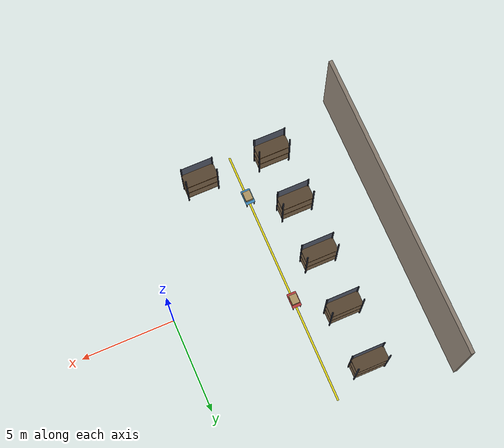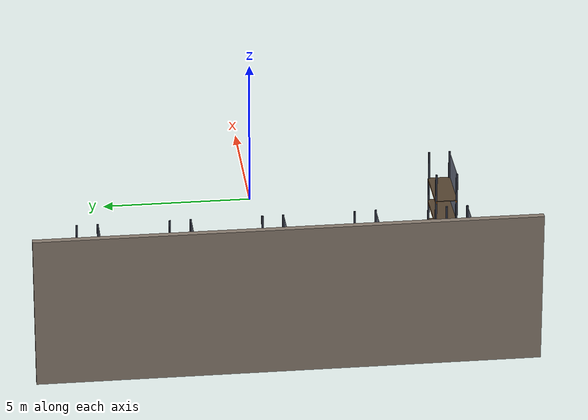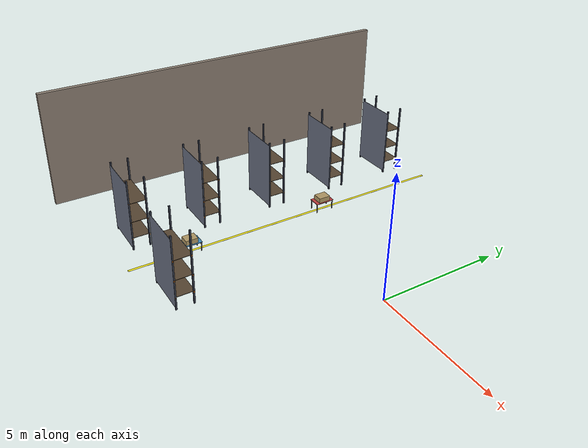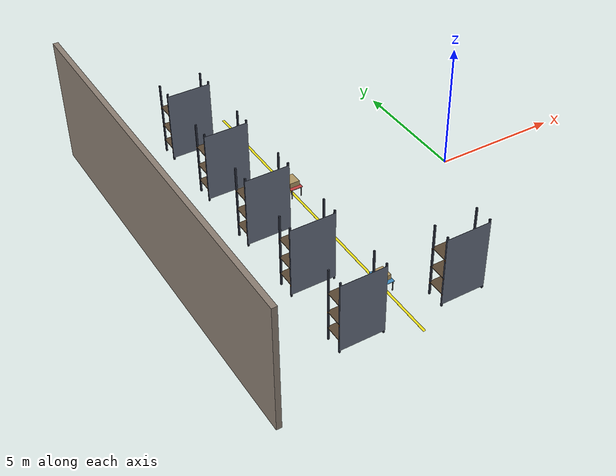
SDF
<sdf version="1.8">
 <world name="warehouse_world">
  <model name="wall_west">
   <static>true</static>
   <pose>-12 0 2.5 0 0 0</pose>
   <link name="link">
    <collision name="col"><geometry><box><size>0.2 16 5</size></box></geometry></collision>
    <visual name="vis">
     <geometry><box><size>0.2 16 5</size></box></geometry>
     <material><ambient>0.5 0.45 0.4 1</ambient><diffuse>0.55 0.5 0.45 1</diffuse></material>
    </visual>
   </link>
  </model>
  <model name="rack_A1">
   <static>true</static>
   <pose>-8 -6 0 0 0 0</pose>
   <link name="link">
    <visual name="u1">
     <pose>0.84 0.34 1.5 0 0 0</pose>
     <geometry><box><size>0.06 0.06 3.0</size></box></geometry>
     <material><ambient>0.15 0.18 0.22 1</ambient><diffuse>0.20 0.22 0.28 1</diffuse></material>
    </visual>
    <collision name="u1c">
     <pose>0.84 0.34 1.5 0 0 0</pose>
     <geometry><box><size>0.06 0.06 3.0</size></box></geometry>
    </collision>
    <visual name="u2">
     <pose>0.84 -0.34 1.5 0 0 0</pose>
     <geometry><box><size>0.06 0.06 3.0</size></box></geometry>
     <material><ambient>0.15 0.18 0.22 1</ambient><diffuse>0.20 0.22 0.28 1</diffuse></material>
    </visual>
    <collision name="u2c">
     <pose>0.84 -0.34 1.5 0 0 0</pose>
     <geometry><box><size>0.06 0.06 3.0</size></box></geometry>
    </collision>
    <visual name="u3">
     <pose>-0.84 0.34 1.5 0 0 0</pose>
     <geometry><box><size>0.06 0.06 3.0</size></box></geometry>
     <material><ambient>0.15 0.18 0.22 1</ambient><diffuse>0.20 0.22 0.28 1</diffuse></material>
    </visual>
    <collision name="u3c">
     <pose>-0.84 0.34 1.5 0 0 0</pose>
     <geometry><box><size>0.06 0.06 3.0</size></box></geometry>
    </collision>
    <visual name="u4">
     <pose>-0.84 -0.34 1.5 0 0 0</pose>
     <geometry><box><size>0.06 0.06 3.0</size></box></geometry>
     <material><ambient>0.15 0.18 0.22 1</ambient><diffuse>0.20 0.22 0.28 1</diffuse></material>
    </visual>
    <collision name="u4c">
     <pose>-0.84 -0.34 1.5 0 0 0</pose>
     <geometry><box><size>0.06 0.06 3.0</size></box></geometry>
    </collision>
    <visual name="b1f">
     <pose>0 0.34 0.50 0 0 0</pose>
     <geometry><box><size>1.74 0.05 0.06</size></box></geometry>
     <material><ambient>0.90 0.45 0.05 1</ambient><diffuse>0.92 0.48 0.08 1</diffuse></material>
    </visual>
    <collision name="b1fc">
     <pose>0 0.34 0.50 0 0 0</pose>
     <geometry><box><size>1.74 0.05 0.06</size></box></geometry>
    </collision>
    <visual name="b1b">
     <pose>0 -0.34 0.50 0 0 0</pose>
     <geometry><box><size>1.74 0.05 0.06</size></box></geometry>
     <material><ambient>0.90 0.45 0.05 1</ambient><diffuse>0.92 0.48 0.08 1</diffuse></material>
    </visual>
    <collision name="b1bc">
     <pose>0 -0.34 0.50 0 0 0</pose>
     <geometry><box><size>1.74 0.05 0.06</size></box></geometry>
    </collision>
    <visual name="d1">
     <pose>0 0 0.54 0 0 0</pose>
     <geometry><box><size>1.74 0.74 0.02</size></box></geometry>
     <material><ambient>0.30 0.25 0.18 1</ambient><diffuse>0.35 0.28 0.20 1</diffuse></material>
    </visual>
    <collision name="d1c">
     <pose>0 0 0.54 0 0 0</pose>
     <geometry><box><size>1.74 0.74 0.02</size></box></geometry>
    </collision>
    <visual name="b2f">
     <pose>0 0.34 1.20 0 0 0</pose>
     <geometry><box><size>1.74 0.05 0.06</size></box></geometry>
     <material><ambient>0.90 0.45 0.05 1</ambient><diffuse>0.92 0.48 0.08 1</diffuse></material>
    </visual>
    <collision name="b2fc">
     <pose>0 0.34 1.20 0 0 0</pose>
     <geometry><box><size>1.74 0.05 0.06</size></box></geometry>
    </collision>
    <visual name="b2b">
     <pose>0 -0.34 1.20 0 0 0</pose>
     <geometry><box><size>1.74 0.05 0.06</size></box></geometry>
     <material><ambient>0.90 0.45 0.05 1</ambient><diffuse>0.92 0.48 0.08 1</diffuse></material>
    </visual>
    <collision name="b2bc">
     <pose>0 -0.34 1.20 0 0 0</pose>
     <geometry><box><size>1.74 0.05 0.06</size></box></geometry>
    </collision>
    <visual name="d2">
     <pose>0 0 1.24 0 0 0</pose>
     <geometry><box><size>1.74 0.74 0.02</size></box></geometry>
     <material><ambient>0.30 0.25 0.18 1</ambient><diffuse>0.35 0.28 0.20 1</diffuse></material>
    </visual>
    <collision name="d2c">
     <pose>0 0 1.24 0 0 0</pose>
     <geometry><box><size>1.74 0.74 0.02</size></box></geometry>
    </collision>
    <visual name="b3f">
     <pose>0 0.34 2.00 0 0 0</pose>
     <geometry><box><size>1.74 0.05 0.06</size></box></geometry>
     <material><ambient>0.90 0.45 0.05 1</ambient><diffuse>0.92 0.48 0.08 1</diffuse></material>
    </visual>
    <collision name="b3fc">
     <pose>0 0.34 2.00 0 0 0</pose>
     <geometry><box><size>1.74 0.05 0.06</size></box></geometry>
    </collision>
    <visual name="b3b">
     <pose>0 -0.34 2.00 0 0 0</pose>
     <geometry><box><size>1.74 0.05 0.06</size></box></geometry>
     <material><ambient>0.90 0.45 0.05 1</ambient><diffuse>0.92 0.48 0.08 1</diffuse></material>
    </visual>
    <collision name="b3bc">
     <pose>0 -0.34 2.00 0 0 0</pose>
     <geometry><box><size>1.74 0.05 0.06</size></box></geometry>
    </collision>
    <visual name="d3">
     <pose>0 0 2.04 0 0 0</pose>
     <geometry><box><size>1.74 0.74 0.02</size></box></geometry>
     <material><ambient>0.30 0.25 0.18 1</ambient><diffuse>0.35 0.28 0.20 1</diffuse></material>
    </visual>
    <collision name="d3c">
     <pose>0 0 2.04 0 0 0</pose>
     <geometry><box><size>1.74 0.74 0.02</size></box></geometry>
    </collision>
    <visual name="brace">
     <pose>0 -0.37 1.5 0 0 0</pose>
     <geometry><box><size>1.74 0.01 2.8</size></box></geometry>
     <material><ambient>0.35 0.38 0.45 1</ambient><diffuse>0.40 0.43 0.50 1</diffuse></material>
    </visual>
   </link>
  </model>
  <model name="rack_A2">
   <static>true</static>
   <pose>-8 -3 0 0 0 0</pose>
   <link name="link">
    <visual name="u1">
     <pose>0.84 0.34 1.5 0 0 0</pose>
     <geometry><box><size>0.06 0.06 3.0</size></box></geometry>
     <material><ambient>0.15 0.18 0.22 1</ambient><diffuse>0.20 0.22 0.28 1</diffuse></material>
    </visual>
    <collision name="u1c">
     <pose>0.84 0.34 1.5 0 0 0</pose>
     <geometry><box><size>0.06 0.06 3.0</size></box></geometry>
    </collision>
    <visual name="u2">
     <pose>0.84 -0.34 1.5 0 0 0</pose>
     <geometry><box><size>0.06 0.06 3.0</size></box></geometry>
     <material><ambient>0.15 0.18 0.22 1</ambient><diffuse>0.20 0.22 0.28 1</diffuse></material>
    </visual>
    <collision name="u2c">
     <pose>0.84 -0.34 1.5 0 0 0</pose>
     <geometry><box><size>0.06 0.06 3.0</size></box></geometry>
    </collision>
    <visual name="u3">
     <pose>-0.84 0.34 1.5 0 0 0</pose>
     <geometry><box><size>0.06 0.06 3.0</size></box></geometry>
     <material><ambient>0.15 0.18 0.22 1</ambient><diffuse>0.20 0.22 0.28 1</diffuse></material>
    </visual>
    <collision name="u3c">
     <pose>-0.84 0.34 1.5 0 0 0</pose>
     <geometry><box><size>0.06 0.06 3.0</size></box></geometry>
    </collision>
    <visual name="u4">
     <pose>-0.84 -0.34 1.5 0 0 0</pose>
     <geometry><box><size>0.06 0.06 3.0</size></box></geometry>
     <material><ambient>0.15 0.18 0.22 1</ambient><diffuse>0.20 0.22 0.28 1</diffuse></material>
    </visual>
    <collision name="u4c">
     <pose>-0.84 -0.34 1.5 0 0 0</pose>
     <geometry><box><size>0.06 0.06 3.0</size></box></geometry>
    </collision>
    <visual name="b1f">
     <pose>0 0.34 0.50 0 0 0</pose>
     <geometry><box><size>1.74 0.05 0.06</size></box></geometry>
     <material><ambient>0.90 0.45 0.05 1</ambient><diffuse>0.92 0.48 0.08 1</diffuse></material>
    </visual>
    <collision name="b1fc">
     <pose>0 0.34 0.50 0 0 0</pose>
     <geometry><box><size>1.74 0.05 0.06</size></box></geometry>
    </collision>
    <visual name="b1b">
     <pose>0 -0.34 0.50 0 0 0</pose>
     <geometry><box><size>1.74 0.05 0.06</size></box></geometry>
     <material><ambient>0.90 0.45 0.05 1</ambient><diffuse>0.92 0.48 0.08 1</diffuse></material>
    </visual>
    <collision name="b1bc">
     <pose>0 -0.34 0.50 0 0 0</pose>
     <geometry><box><size>1.74 0.05 0.06</size></box></geometry>
    </collision>
    <visual name="d1">
     <pose>0 0 0.54 0 0 0</pose>
     <geometry><box><size>1.74 0.74 0.02</size></box></geometry>
     <material><ambient>0.30 0.25 0.18 1</ambient><diffuse>0.35 0.28 0.20 1</diffuse></material>
    </visual>
    <collision name="d1c">
     <pose>0 0 0.54 0 0 0</pose>
     <geometry><box><size>1.74 0.74 0.02</size></box></geometry>
    </collision>
    <visual name="b2f">
     <pose>0 0.34 1.20 0 0 0</pose>
     <geometry><box><size>1.74 0.05 0.06</size></box></geometry>
     <material><ambient>0.90 0.45 0.05 1</ambient><diffuse>0.92 0.48 0.08 1</diffuse></material>
    </visual>
    <collision name="b2fc">
     <pose>0 0.34 1.20 0 0 0</pose>
     <geometry><box><size>1.74 0.05 0.06</size></box></geometry>
    </collision>
    <visual name="b2b">
     <pose>0 -0.34 1.20 0 0 0</pose>
     <geometry><box><size>1.74 0.05 0.06</size></box></geometry>
     <material><ambient>0.90 0.45 0.05 1</ambient><diffuse>0.92 0.48 0.08 1</diffuse></material>
    </visual>
    <collision name="b2bc">
     <pose>0 -0.34 1.20 0 0 0</pose>
     <geometry><box><size>1.74 0.05 0.06</size></box></geometry>
    </collision>
    <visual name="d2">
     <pose>0 0 1.24 0 0 0</pose>
     <geometry><box><size>1.74 0.74 0.02</size></box></geometry>
     <material><ambient>0.30 0.25 0.18 1</ambient><diffuse>0.35 0.28 0.20 1</diffuse></material>
    </visual>
    <collision name="d2c">
     <pose>0 0 1.24 0 0 0</pose>
     <geometry><box><size>1.74 0.74 0.02</size></box></geometry>
    </collision>
    <visual name="b3f">
     <pose>0 0.34 2.00 0 0 0</pose>
     <geometry><box><size>1.74 0.05 0.06</size></box></geometry>
     <material><ambient>0.90 0.45 0.05 1</ambient><diffuse>0.92 0.48 0.08 1</diffuse></material>
    </visual>
    <collision name="b3fc">
     <pose>0 0.34 2.00 0 0 0</pose>
     <geometry><box><size>1.74 0.05 0.06</size></box></geometry>
    </collision>
    <visual name="b3b">
     <pose>0 -0.34 2.00 0 0 0</pose>
     <geometry><box><size>1.74 0.05 0.06</size></box></geometry>
     <material><ambient>0.90 0.45 0.05 1</ambient><diffuse>0.92 0.48 0.08 1</diffuse></material>
    </visual>
    <collision name="b3bc">
     <pose>0 -0.34 2.00 0 0 0</pose>
     <geometry><box><size>1.74 0.05 0.06</size></box></geometry>
    </collision>
    <visual name="d3">
     <pose>0 0 2.04 0 0 0</pose>
     <geometry><box><size>1.74 0.74 0.02</size></box></geometry>
     <material><ambient>0.30 0.25 0.18 1</ambient><diffuse>0.35 0.28 0.20 1</diffuse></material>
    </visual>
    <collision name="d3c">
     <pose>0 0 2.04 0 0 0</pose>
     <geometry><box><size>1.74 0.74 0.02</size></box></geometry>
    </collision>
    <visual name="brace">
     <pose>0 -0.37 1.5 0 0 0</pose>
     <geometry><box><size>1.74 0.01 2.8</size></box></geometry>
     <material><ambient>0.35 0.38 0.45 1</ambient><diffuse>0.40 0.43 0.50 1</diffuse></material>
    </visual>
   </link>
  </model>
  <model name="rack_A3">
   <static>true</static>
   <pose>-8 0 0 0 0 0</pose>
   <link name="link">
    <visual name="u1">
     <pose>0.84 0.34 1.5 0 0 0</pose>
     <geometry><box><size>0.06 0.06 3.0</size></box></geometry>
     <material><ambient>0.15 0.18 0.22 1</ambient><diffuse>0.20 0.22 0.28 1</diffuse></material>
    </visual>
    <collision name="u1c">
     <pose>0.84 0.34 1.5 0 0 0</pose>
     <geometry><box><size>0.06 0.06 3.0</size></box></geometry>
    </collision>
    <visual name="u2">
     <pose>0.84 -0.34 1.5 0 0 0</pose>
     <geometry><box><size>0.06 0.06 3.0</size></box></geometry>
     <material><ambient>0.15 0.18 0.22 1</ambient><diffuse>0.20 0.22 0.28 1</diffuse></material>
    </visual>
    <collision name="u2c">
     <pose>0.84 -0.34 1.5 0 0 0</pose>
     <geometry><box><size>0.06 0.06 3.0</size></box></geometry>
    </collision>
    <visual name="u3">
     <pose>-0.84 0.34 1.5 0 0 0</pose>
     <geometry><box><size>0.06 0.06 3.0</size></box></geometry>
     <material><ambient>0.15 0.18 0.22 1</ambient><diffuse>0.20 0.22 0.28 1</diffuse></material>
    </visual>
    <collision name="u3c">
     <pose>-0.84 0.34 1.5 0 0 0</pose>
     <geometry><box><size>0.06 0.06 3.0</size></box></geometry>
    </collision>
    <visual name="u4">
     <pose>-0.84 -0.34 1.5 0 0 0</pose>
     <geometry><box><size>0.06 0.06 3.0</size></box></geometry>
     <material><ambient>0.15 0.18 0.22 1</ambient><diffuse>0.20 0.22 0.28 1</diffuse></material>
    </visual>
    <collision name="u4c">
     <pose>-0.84 -0.34 1.5 0 0 0</pose>
     <geometry><box><size>0.06 0.06 3.0</size></box></geometry>
    </collision>
    <visual name="b1f">
     <pose>0 0.34 0.50 0 0 0</pose>
     <geometry><box><size>1.74 0.05 0.06</size></box></geometry>
     <material><ambient>0.90 0.45 0.05 1</ambient><diffuse>0.92 0.48 0.08 1</diffuse></material>
    </visual>
    <collision name="b1fc">
     <pose>0 0.34 0.50 0 0 0</pose>
     <geometry><box><size>1.74 0.05 0.06</size></box></geometry>
    </collision>
    <visual name="b1b">
     <pose>0 -0.34 0.50 0 0 0</pose>
     <geometry><box><size>1.74 0.05 0.06</size></box></geometry>
     <material><ambient>0.90 0.45 0.05 1</ambient><diffuse>0.92 0.48 0.08 1</diffuse></material>
    </visual>
    <collision name="b1bc">
     <pose>0 -0.34 0.50 0 0 0</pose>
     <geometry><box><size>1.74 0.05 0.06</size></box></geometry>
    </collision>
    <visual name="d1">
     <pose>0 0 0.54 0 0 0</pose>
     <geometry><box><size>1.74 0.74 0.02</size></box></geometry>
     <material><ambient>0.30 0.25 0.18 1</ambient><diffuse>0.35 0.28 0.20 1</diffuse></material>
    </visual>
    <collision name="d1c">
     <pose>0 0 0.54 0 0 0</pose>
     <geometry><box><size>1.74 0.74 0.02</size></box></geometry>
    </collision>
    <visual name="b2f">
     <pose>0 0.34 1.20 0 0 0</pose>
     <geometry><box><size>1.74 0.05 0.06</size></box></geometry>
     <material><ambient>0.90 0.45 0.05 1</ambient><diffuse>0.92 0.48 0.08 1</diffuse></material>
    </visual>
    <collision name="b2fc">
     <pose>0 0.34 1.20 0 0 0</pose>
     <geometry><box><size>1.74 0.05 0.06</size></box></geometry>
    </collision>
    <visual name="b2b">
     <pose>0 -0.34 1.20 0 0 0</pose>
     <geometry><box><size>1.74 0.05 0.06</size></box></geometry>
     <material><ambient>0.90 0.45 0.05 1</ambient><diffuse>0.92 0.48 0.08 1</diffuse></material>
    </visual>
    <collision name="b2bc">
     <pose>0 -0.34 1.20 0 0 0</pose>
     <geometry><box><size>1.74 0.05 0.06</size></box></geometry>
    </collision>
    <visual name="d2">
     <pose>0 0 1.24 0 0 0</pose>
     <geometry><box><size>1.74 0.74 0.02</size></box></geometry>
     <material><ambient>0.30 0.25 0.18 1</ambient><diffuse>0.35 0.28 0.20 1</diffuse></material>
    </visual>
    <collision name="d2c">
     <pose>0 0 1.24 0 0 0</pose>
     <geometry><box><size>1.74 0.74 0.02</size></box></geometry>
    </collision>
    <visual name="b3f">
     <pose>0 0.34 2.00 0 0 0</pose>
     <geometry><box><size>1.74 0.05 0.06</size></box></geometry>
     <material><ambient>0.90 0.45 0.05 1</ambient><diffuse>0.92 0.48 0.08 1</diffuse></material>
    </visual>
    <collision name="b3fc">
     <pose>0 0.34 2.00 0 0 0</pose>
     <geometry><box><size>1.74 0.05 0.06</size></box></geometry>
    </collision>
    <visual name="b3b">
     <pose>0 -0.34 2.00 0 0 0</pose>
     <geometry><box><size>1.74 0.05 0.06</size></box></geometry>
     <material><ambient>0.90 0.45 0.05 1</ambient><diffuse>0.92 0.48 0.08 1</diffuse></material>
    </visual>
    <collision name="b3bc">
     <pose>0 -0.34 2.00 0 0 0</pose>
     <geometry><box><size>1.74 0.05 0.06</size></box></geometry>
    </collision>
    <visual name="d3">
     <pose>0 0 2.04 0 0 0</pose>
     <geometry><box><size>1.74 0.74 0.02</size></box></geometry>
     <material><ambient>0.30 0.25 0.18 1</ambient><diffuse>0.35 0.28 0.20 1</diffuse></material>
    </visual>
    <collision name="d3c">
     <pose>0 0 2.04 0 0 0</pose>
     <geometry><box><size>1.74 0.74 0.02</size></box></geometry>
    </collision>
    <visual name="brace">
     <pose>0 -0.37 1.5 0 0 0</pose>
     <geometry><box><size>1.74 0.01 2.8</size></box></geometry>
     <material><ambient>0.35 0.38 0.45 1</ambient><diffuse>0.40 0.43 0.50 1</diffuse></material>
    </visual>
   </link>
  </model>
  <model name="rack_A4">
   <static>true</static>
   <pose>-8 3 0 0 0 0</pose>
   <link name="link">
    <visual name="u1">
     <pose>0.84 0.34 1.5 0 0 0</pose>
     <geometry><box><size>0.06 0.06 3.0</size></box></geometry>
     <material><ambient>0.15 0.18 0.22 1</ambient><diffuse>0.20 0.22 0.28 1</diffuse></material>
    </visual>
    <collision name="u1c">
     <pose>0.84 0.34 1.5 0 0 0</pose>
     <geometry><box><size>0.06 0.06 3.0</size></box></geometry>
    </collision>
    <visual name="u2">
     <pose>0.84 -0.34 1.5 0 0 0</pose>
     <geometry><box><size>0.06 0.06 3.0</size></box></geometry>
     <material><ambient>0.15 0.18 0.22 1</ambient><diffuse>0.20 0.22 0.28 1</diffuse></material>
    </visual>
    <collision name="u2c">
     <pose>0.84 -0.34 1.5 0 0 0</pose>
     <geometry><box><size>0.06 0.06 3.0</size></box></geometry>
    </collision>
    <visual name="u3">
     <pose>-0.84 0.34 1.5 0 0 0</pose>
     <geometry><box><size>0.06 0.06 3.0</size></box></geometry>
     <material><ambient>0.15 0.18 0.22 1</ambient><diffuse>0.20 0.22 0.28 1</diffuse></material>
    </visual>
    <collision name="u3c">
     <pose>-0.84 0.34 1.5 0 0 0</pose>
     <geometry><box><size>0.06 0.06 3.0</size></box></geometry>
    </collision>
    <visual name="u4">
     <pose>-0.84 -0.34 1.5 0 0 0</pose>
     <geometry><box><size>0.06 0.06 3.0</size></box></geometry>
     <material><ambient>0.15 0.18 0.22 1</ambient><diffuse>0.20 0.22 0.28 1</diffuse></material>
    </visual>
    <collision name="u4c">
     <pose>-0.84 -0.34 1.5 0 0 0</pose>
     <geometry><box><size>0.06 0.06 3.0</size></box></geometry>
    </collision>
    <visual name="b1f">
     <pose>0 0.34 0.50 0 0 0</pose>
     <geometry><box><size>1.74 0.05 0.06</size></box></geometry>
     <material><ambient>0.90 0.45 0.05 1</ambient><diffuse>0.92 0.48 0.08 1</diffuse></material>
    </visual>
    <collision name="b1fc">
     <pose>0 0.34 0.50 0 0 0</pose>
     <geometry><box><size>1.74 0.05 0.06</size></box></geometry>
    </collision>
    <visual name="b1b">
     <pose>0 -0.34 0.50 0 0 0</pose>
     <geometry><box><size>1.74 0.05 0.06</size></box></geometry>
     <material><ambient>0.90 0.45 0.05 1</ambient><diffuse>0.92 0.48 0.08 1</diffuse></material>
    </visual>
    <collision name="b1bc">
     <pose>0 -0.34 0.50 0 0 0</pose>
     <geometry><box><size>1.74 0.05 0.06</size></box></geometry>
    </collision>
    <visual name="d1">
     <pose>0 0 0.54 0 0 0</pose>
     <geometry><box><size>1.74 0.74 0.02</size></box></geometry>
     <material><ambient>0.30 0.25 0.18 1</ambient><diffuse>0.35 0.28 0.20 1</diffuse></material>
    </visual>
    <collision name="d1c">
     <pose>0 0 0.54 0 0 0</pose>
     <geometry><box><size>1.74 0.74 0.02</size></box></geometry>
    </collision>
    <visual name="b2f">
     <pose>0 0.34 1.20 0 0 0</pose>
     <geometry><box><size>1.74 0.05 0.06</size></box></geometry>
     <material><ambient>0.90 0.45 0.05 1</ambient><diffuse>0.92 0.48 0.08 1</diffuse></material>
    </visual>
    <collision name="b2fc">
     <pose>0 0.34 1.20 0 0 0</pose>
     <geometry><box><size>1.74 0.05 0.06</size></box></geometry>
    </collision>
    <visual name="b2b">
     <pose>0 -0.34 1.20 0 0 0</pose>
     <geometry><box><size>1.74 0.05 0.06</size></box></geometry>
     <material><ambient>0.90 0.45 0.05 1</ambient><diffuse>0.92 0.48 0.08 1</diffuse></material>
    </visual>
    <collision name="b2bc">
     <pose>0 -0.34 1.20 0 0 0</pose>
     <geometry><box><size>1.74 0.05 0.06</size></box></geometry>
    </collision>
    <visual name="d2">
     <pose>0 0 1.24 0 0 0</pose>
     <geometry><box><size>1.74 0.74 0.02</size></box></geometry>
     <material><ambient>0.30 0.25 0.18 1</ambient><diffuse>0.35 0.28 0.20 1</diffuse></material>
    </visual>
    <collision name="d2c">
     <pose>0 0 1.24 0 0 0</pose>
     <geometry><box><size>1.74 0.74 0.02</size></box></geometry>
    </collision>
    <visual name="b3f">
     <pose>0 0.34 2.00 0 0 0</pose>
     <geometry><box><size>1.74 0.05 0.06</size></box></geometry>
     <material><ambient>0.90 0.45 0.05 1</ambient><diffuse>0.92 0.48 0.08 1</diffuse></material>
    </visual>
    <collision name="b3fc">
     <pose>0 0.34 2.00 0 0 0</pose>
     <geometry><box><size>1.74 0.05 0.06</size></box></geometry>
    </collision>
    <visual name="b3b">
     <pose>0 -0.34 2.00 0 0 0</pose>
     <geometry><box><size>1.74 0.05 0.06</size></box></geometry>
     <material><ambient>0.90 0.45 0.05 1</ambient><diffuse>0.92 0.48 0.08 1</diffuse></material>
    </visual>
    <collision name="b3bc">
     <pose>0 -0.34 2.00 0 0 0</pose>
     <geometry><box><size>1.74 0.05 0.06</size></box></geometry>
    </collision>
    <visual name="d3">
     <pose>0 0 2.04 0 0 0</pose>
     <geometry><box><size>1.74 0.74 0.02</size></box></geometry>
     <material><ambient>0.30 0.25 0.18 1</ambient><diffuse>0.35 0.28 0.20 1</diffuse></material>
    </visual>
    <collision name="d3c">
     <pose>0 0 2.04 0 0 0</pose>
     <geometry><box><size>1.74 0.74 0.02</size></box></geometry>
    </collision>
    <visual name="brace">
     <pose>0 -0.37 1.5 0 0 0</pose>
     <geometry><box><size>1.74 0.01 2.8</size></box></geometry>
     <material><ambient>0.35 0.38 0.45 1</ambient><diffuse>0.40 0.43 0.50 1</diffuse></material>
    </visual>
   </link>
  </model>
  <model name="rack_A5">
   <static>true</static>
   <pose>-8 6 0 0 0 0</pose>
   <link name="link">
    <visual name="u1">
     <pose>0.84 0.34 1.5 0 0 0</pose>
     <geometry><box><size>0.06 0.06 3.0</size></box></geometry>
     <material><ambient>0.15 0.18 0.22 1</ambient><diffuse>0.20 0.22 0.28 1</diffuse></material>
    </visual>
    <collision name="u1c">
     <pose>0.84 0.34 1.5 0 0 0</pose>
     <geometry><box><size>0.06 0.06 3.0</size></box></geometry>
    </collision>
    <visual name="u2">
     <pose>0.84 -0.34 1.5 0 0 0</pose>
     <geometry><box><size>0.06 0.06 3.0</size></box></geometry>
     <material><ambient>0.15 0.18 0.22 1</ambient><diffuse>0.20 0.22 0.28 1</diffuse></material>
    </visual>
    <collision name="u2c">
     <pose>0.84 -0.34 1.5 0 0 0</pose>
     <geometry><box><size>0.06 0.06 3.0</size></box></geometry>
    </collision>
    <visual name="u3">
     <pose>-0.84 0.34 1.5 0 0 0</pose>
     <geometry><box><size>0.06 0.06 3.0</size></box></geometry>
     <material><ambient>0.15 0.18 0.22 1</ambient><diffuse>0.20 0.22 0.28 1</diffuse></material>
    </visual>
    <collision name="u3c">
     <pose>-0.84 0.34 1.5 0 0 0</pose>
     <geometry><box><size>0.06 0.06 3.0</size></box></geometry>
    </collision>
    <visual name="u4">
     <pose>-0.84 -0.34 1.5 0 0 0</pose>
     <geometry><box><size>0.06 0.06 3.0</size></box></geometry>
     <material><ambient>0.15 0.18 0.22 1</ambient><diffuse>0.20 0.22 0.28 1</diffuse></material>
    </visual>
    <collision name="u4c">
     <pose>-0.84 -0.34 1.5 0 0 0</pose>
     <geometry><box><size>0.06 0.06 3.0</size></box></geometry>
    </collision>
    <visual name="b1f">
     <pose>0 0.34 0.50 0 0 0</pose>
     <geometry><box><size>1.74 0.05 0.06</size></box></geometry>
     <material><ambient>0.90 0.45 0.05 1</ambient><diffuse>0.92 0.48 0.08 1</diffuse></material>
    </visual>
    <collision name="b1fc">
     <pose>0 0.34 0.50 0 0 0</pose>
     <geometry><box><size>1.74 0.05 0.06</size></box></geometry>
    </collision>
    <visual name="b1b">
     <pose>0 -0.34 0.50 0 0 0</pose>
     <geometry><box><size>1.74 0.05 0.06</size></box></geometry>
     <material><ambient>0.90 0.45 0.05 1</ambient><diffuse>0.92 0.48 0.08 1</diffuse></material>
    </visual>
    <collision name="b1bc">
     <pose>0 -0.34 0.50 0 0 0</pose>
     <geometry><box><size>1.74 0.05 0.06</size></box></geometry>
    </collision>
    <visual name="d1">
     <pose>0 0 0.54 0 0 0</pose>
     <geometry><box><size>1.74 0.74 0.02</size></box></geometry>
     <material><ambient>0.30 0.25 0.18 1</ambient><diffuse>0.35 0.28 0.20 1</diffuse></material>
    </visual>
    <collision name="d1c">
     <pose>0 0 0.54 0 0 0</pose>
     <geometry><box><size>1.74 0.74 0.02</size></box></geometry>
    </collision>
    <visual name="b2f">
     <pose>0 0.34 1.20 0 0 0</pose>
     <geometry><box><size>1.74 0.05 0.06</size></box></geometry>
     <material><ambient>0.90 0.45 0.05 1</ambient><diffuse>0.92 0.48 0.08 1</diffuse></material>
    </visual>
    <collision name="b2fc">
     <pose>0 0.34 1.20 0 0 0</pose>
     <geometry><box><size>1.74 0.05 0.06</size></box></geometry>
    </collision>
    <visual name="b2b">
     <pose>0 -0.34 1.20 0 0 0</pose>
     <geometry><box><size>1.74 0.05 0.06</size></box></geometry>
     <material><ambient>0.90 0.45 0.05 1</ambient><diffuse>0.92 0.48 0.08 1</diffuse></material>
    </visual>
    <collision name="b2bc">
     <pose>0 -0.34 1.20 0 0 0</pose>
     <geometry><box><size>1.74 0.05 0.06</size></box></geometry>
    </collision>
    <visual name="d2">
     <pose>0 0 1.24 0 0 0</pose>
     <geometry><box><size>1.74 0.74 0.02</size></box></geometry>
     <material><ambient>0.30 0.25 0.18 1</ambient><diffuse>0.35 0.28 0.20 1</diffuse></material>
    </visual>
    <collision name="d2c">
     <pose>0 0 1.24 0 0 0</pose>
     <geometry><box><size>1.74 0.74 0.02</size></box></geometry>
    </collision>
    <visual name="b3f">
     <pose>0 0.34 2.00 0 0 0</pose>
     <geometry><box><size>1.74 0.05 0.06</size></box></geometry>
     <material><ambient>0.90 0.45 0.05 1</ambient><diffuse>0.92 0.48 0.08 1</diffuse></material>
    </visual>
    <collision name="b3fc">
     <pose>0 0.34 2.00 0 0 0</pose>
     <geometry><box><size>1.74 0.05 0.06</size></box></geometry>
    </collision>
    <visual name="b3b">
     <pose>0 -0.34 2.00 0 0 0</pose>
     <geometry><box><size>1.74 0.05 0.06</size></box></geometry>
     <material><ambient>0.90 0.45 0.05 1</ambient><diffuse>0.92 0.48 0.08 1</diffuse></material>
    </visual>
    <collision name="b3bc">
     <pose>0 -0.34 2.00 0 0 0</pose>
     <geometry><box><size>1.74 0.05 0.06</size></box></geometry>
    </collision>
    <visual name="d3">
     <pose>0 0 2.04 0 0 0</pose>
     <geometry><box><size>1.74 0.74 0.02</size></box></geometry>
     <material><ambient>0.30 0.25 0.18 1</ambient><diffuse>0.35 0.28 0.20 1</diffuse></material>
    </visual>
    <collision name="d3c">
     <pose>0 0 2.04 0 0 0</pose>
     <geometry><box><size>1.74 0.74 0.02</size></box></geometry>
    </collision>
    <visual name="brace">
     <pose>0 -0.37 1.5 0 0 0</pose>
     <geometry><box><size>1.74 0.01 2.8</size></box></geometry>
     <material><ambient>0.35 0.38 0.45 1</ambient><diffuse>0.40 0.43 0.50 1</diffuse></material>
    </visual>
   </link>
  </model>
  <model name="rack_B1">
   <static>true</static>
   <pose>-4 -6 0 0 0 0</pose>
   <link name="link">
    <visual name="u1">
     <pose>0.84 0.34 1.5 0 0 0</pose>
     <geometry><box><size>0.06 0.06 3.0</size></box></geometry>
     <material><ambient>0.15 0.18 0.22 1</ambient><diffuse>0.20 0.22 0.28 1</diffuse></material>
    </visual>
    <collision name="u1c">
     <pose>0.84 0.34 1.5 0 0 0</pose>
     <geometry><box><size>0.06 0.06 3.0</size></box></geometry>
    </collision>
    <visual name="u2">
     <pose>0.84 -0.34 1.5 0 0 0</pose>
     <geometry><box><size>0.06 0.06 3.0</size></box></geometry>
     <material><ambient>0.15 0.18 0.22 1</ambient><diffuse>0.20 0.22 0.28 1</diffuse></material>
    </visual>
    <collision name="u2c">
     <pose>0.84 -0.34 1.5 0 0 0</pose>
     <geometry><box><size>0.06 0.06 3.0</size></box></geometry>
    </collision>
    <visual name="u3">
     <pose>-0.84 0.34 1.5 0 0 0</pose>
     <geometry><box><size>0.06 0.06 3.0</size></box></geometry>
     <material><ambient>0.15 0.18 0.22 1</ambient><diffuse>0.20 0.22 0.28 1</diffuse></material>
    </visual>
    <collision name="u3c">
     <pose>-0.84 0.34 1.5 0 0 0</pose>
     <geometry><box><size>0.06 0.06 3.0</size></box></geometry>
    </collision>
    <visual name="u4">
     <pose>-0.84 -0.34 1.5 0 0 0</pose>
     <geometry><box><size>0.06 0.06 3.0</size></box></geometry>
     <material><ambient>0.15 0.18 0.22 1</ambient><diffuse>0.20 0.22 0.28 1</diffuse></material>
    </visual>
    <collision name="u4c">
     <pose>-0.84 -0.34 1.5 0 0 0</pose>
     <geometry><box><size>0.06 0.06 3.0</size></box></geometry>
    </collision>
    <visual name="b1f">
     <pose>0 0.34 0.50 0 0 0</pose>
     <geometry><box><size>1.74 0.05 0.06</size></box></geometry>
     <material><ambient>0.90 0.45 0.05 1</ambient><diffuse>0.92 0.48 0.08 1</diffuse></material>
    </visual>
    <collision name="b1fc">
     <pose>0 0.34 0.50 0 0 0</pose>
     <geometry><box><size>1.74 0.05 0.06</size></box></geometry>
    </collision>
    <visual name="b1b">
     <pose>0 -0.34 0.50 0 0 0</pose>
     <geometry><box><size>1.74 0.05 0.06</size></box></geometry>
     <material><ambient>0.90 0.45 0.05 1</ambient><diffuse>0.92 0.48 0.08 1</diffuse></material>
    </visual>
    <collision name="b1bc">
     <pose>0 -0.34 0.50 0 0 0</pose>
     <geometry><box><size>1.74 0.05 0.06</size></box></geometry>
    </collision>
    <visual name="d1">
     <pose>0 0 0.54 0 0 0</pose>
     <geometry><box><size>1.74 0.74 0.02</size></box></geometry>
     <material><ambient>0.30 0.25 0.18 1</ambient><diffuse>0.35 0.28 0.20 1</diffuse></material>
    </visual>
    <collision name="d1c">
     <pose>0 0 0.54 0 0 0</pose>
     <geometry><box><size>1.74 0.74 0.02</size></box></geometry>
    </collision>
    <visual name="b2f">
     <pose>0 0.34 1.20 0 0 0</pose>
     <geometry><box><size>1.74 0.05 0.06</size></box></geometry>
     <material><ambient>0.90 0.45 0.05 1</ambient><diffuse>0.92 0.48 0.08 1</diffuse></material>
    </visual>
    <collision name="b2fc">
     <pose>0 0.34 1.20 0 0 0</pose>
     <geometry><box><size>1.74 0.05 0.06</size></box></geometry>
    </collision>
    <visual name="b2b">
     <pose>0 -0.34 1.20 0 0 0</pose>
     <geometry><box><size>1.74 0.05 0.06</size></box></geometry>
     <material><ambient>0.90 0.45 0.05 1</ambient><diffuse>0.92 0.48 0.08 1</diffuse></material>
    </visual>
    <collision name="b2bc">
     <pose>0 -0.34 1.20 0 0 0</pose>
     <geometry><box><size>1.74 0.05 0.06</size></box></geometry>
    </collision>
    <visual name="d2">
     <pose>0 0 1.24 0 0 0</pose>
     <geometry><box><size>1.74 0.74 0.02</size></box></geometry>
     <material><ambient>0.30 0.25 0.18 1</ambient><diffuse>0.35 0.28 0.20 1</diffuse></material>
    </visual>
    <collision name="d2c">
     <pose>0 0 1.24 0 0 0</pose>
     <geometry><box><size>1.74 0.74 0.02</size></box></geometry>
    </collision>
    <visual name="b3f">
     <pose>0 0.34 2.00 0 0 0</pose>
     <geometry><box><size>1.74 0.05 0.06</size></box></geometry>
     <material><ambient>0.90 0.45 0.05 1</ambient><diffuse>0.92 0.48 0.08 1</diffuse></material>
    </visual>
    <collision name="b3fc">
     <pose>0 0.34 2.00 0 0 0</pose>
     <geometry><box><size>1.74 0.05 0.06</size></box></geometry>
    </collision>
    <visual name="b3b">
     <pose>0 -0.34 2.00 0 0 0</pose>
     <geometry><box><size>1.74 0.05 0.06</size></box></geometry>
     <material><ambient>0.90 0.45 0.05 1</ambient><diffuse>0.92 0.48 0.08 1</diffuse></material>
    </visual>
    <collision name="b3bc">
     <pose>0 -0.34 2.00 0 0 0</pose>
     <geometry><box><size>1.74 0.05 0.06</size></box></geometry>
    </collision>
    <visual name="d3">
     <pose>0 0 2.04 0 0 0</pose>
     <geometry><box><size>1.74 0.74 0.02</size></box></geometry>
     <material><ambient>0.30 0.25 0.18 1</ambient><diffuse>0.35 0.28 0.20 1</diffuse></material>
    </visual>
    <collision name="d3c">
     <pose>0 0 2.04 0 0 0</pose>
     <geometry><box><size>1.74 0.74 0.02</size></box></geometry>
    </collision>
    <visual name="brace">
     <pose>0 -0.37 1.5 0 0 0</pose>
     <geometry><box><size>1.74 0.01 2.8</size></box></geometry>
     <material><ambient>0.35 0.38 0.45 1</ambient><diffuse>0.40 0.43 0.50 1</diffuse></material>
    </visual>
   </link>
  </model>
  <model name="cart_1">
   <pose>-6 -4.5 0 0 0 0</pose>
   <link name="platform">
    <visual name="top">
     <pose>0 0 0.41 0 0 0</pose>
     <geometry><box><size>0.50 0.80 0.02</size></box></geometry>
     <material><ambient>0.2 0.5 0.7 1</ambient><diffuse>0.25 0.55 0.75 1</diffuse></material>
    </visual>
    <collision name="topc">
     <pose>0 0 0.41 0 0 0</pose>
     <geometry><box><size>0.50 0.80 0.02</size></box></geometry>
    </collision>
    <visual name="leg1">
     <pose>0.20 0.37 0.20 0 0 0</pose>
     <geometry><box><size>0.03 0.03 0.40</size></box></geometry>
     <material><ambient>0.3 0.3 0.3 1</ambient><diffuse>0.4 0.4 0.4 1</diffuse></material>
    </visual>
    <collision name="leg1c">
     <pose>0.20 0.37 0.20 0 0 0</pose>
     <geometry><box><size>0.03 0.03 0.40</size></box></geometry>
    </collision>
    <visual name="leg2">
     <pose>0.20 -0.37 0.20 0 0 0</pose>
     <geometry><box><size>0.03 0.03 0.40</size></box></geometry>
     <material><ambient>0.3 0.3 0.3 1</ambient><diffuse>0.4 0.4 0.4 1</diffuse></material>
    </visual>
    <collision name="leg2c">
     <pose>0.20 -0.37 0.20 0 0 0</pose>
     <geometry><box><size>0.03 0.03 0.40</size></box></geometry>
    </collision>
    <visual name="leg3">
     <pose>-0.20 0.37 0.20 0 0 0</pose>
     <geometry><box><size>0.03 0.03 0.40</size></box></geometry>
     <material><ambient>0.3 0.3 0.3 1</ambient><diffuse>0.4 0.4 0.4 1</diffuse></material>
    </visual>
    <collision name="leg3c">
     <pose>-0.20 0.37 0.20 0 0 0</pose>
     <geometry><box><size>0.03 0.03 0.40</size></box></geometry>
    </collision>
    <visual name="leg4">
     <pose>-0.20 -0.37 0.20 0 0 0</pose>
     <geometry><box><size>0.03 0.03 0.40</size></box></geometry>
     <material><ambient>0.3 0.3 0.3 1</ambient><diffuse>0.4 0.4 0.4 1</diffuse></material>
    </visual>
    <collision name="leg4c">
     <pose>-0.20 -0.37 0.20 0 0 0</pose>
     <geometry><box><size>0.03 0.03 0.40</size></box></geometry>
    </collision>
    <visual name="cargo">
     <pose>0 0 0.52 0 0 0</pose>
     <geometry><box><size>0.40 0.50 0.20</size></box></geometry>
     <material><ambient>0.65 0.55 0.35 1</ambient><diffuse>0.70 0.60 0.40 1</diffuse></material>
    </visual>
    <collision name="cargoc">
     <pose>0 0 0.52 0 0 0</pose>
     <geometry><box><size>0.40 0.50 0.20</size></box></geometry>
    </collision>
    <inertial>
     <mass>3.0</mass>
     <inertia><ixx>0.05</ixx><iyy>0.05</iyy><izz>0.05</izz><ixy>0</ixy><ixz>0</ixz><iyz>0</iyz></inertia>
    </inertial>
   </link>
  </model>
  <model name="cart_2">
   <pose>-6 1.5 0 0 0 0</pose>
   <link name="platform">
    <visual name="top">
     <pose>0 0 0.41 0 0 0</pose>
     <geometry><box><size>0.50 0.80 0.02</size></box></geometry>
     <material><ambient>0.7 0.2 0.2 1</ambient><diffuse>0.75 0.25 0.25 1</diffuse></material>
    </visual>
    <collision name="topc">
     <pose>0 0 0.41 0 0 0</pose>
     <geometry><box><size>0.50 0.80 0.02</size></box></geometry>
    </collision>
    <visual name="leg1">
     <pose>0.20 0.37 0.20 0 0 0</pose>
     <geometry><box><size>0.03 0.03 0.40</size></box></geometry>
     <material><ambient>0.3 0.3 0.3 1</ambient><diffuse>0.4 0.4 0.4 1</diffuse></material>
    </visual>
    <collision name="leg1c">
     <pose>0.20 0.37 0.20 0 0 0</pose>
     <geometry><box><size>0.03 0.03 0.40</size></box></geometry>
    </collision>
    <visual name="leg2">
     <pose>0.20 -0.37 0.20 0 0 0</pose>
     <geometry><box><size>0.03 0.03 0.40</size></box></geometry>
     <material><ambient>0.3 0.3 0.3 1</ambient><diffuse>0.4 0.4 0.4 1</diffuse></material>
    </visual>
    <collision name="leg2c">
     <pose>0.20 -0.37 0.20 0 0 0</pose>
     <geometry><box><size>0.03 0.03 0.40</size></box></geometry>
    </collision>
    <visual name="leg3">
     <pose>-0.20 0.37 0.20 0 0 0</pose>
     <geometry><box><size>0.03 0.03 0.40</size></box></geometry>
     <material><ambient>0.3 0.3 0.3 1</ambient><diffuse>0.4 0.4 0.4 1</diffuse></material>
    </visual>
    <collision name="leg3c">
     <pose>-0.20 0.37 0.20 0 0 0</pose>
     <geometry><box><size>0.03 0.03 0.40</size></box></geometry>
    </collision>
    <visual name="leg4">
     <pose>-0.20 -0.37 0.20 0 0 0</pose>
     <geometry><box><size>0.03 0.03 0.40</size></box></geometry>
     <material><ambient>0.3 0.3 0.3 1</ambient><diffuse>0.4 0.4 0.4 1</diffuse></material>
    </visual>
    <collision name="leg4c">
     <pose>-0.20 -0.37 0.20 0 0 0</pose>
     <geometry><box><size>0.03 0.03 0.40</size></box></geometry>
    </collision>
    <visual name="cargo">
     <pose>0 0 0.52 0 0 0</pose>
     <geometry><box><size>0.40 0.50 0.20</size></box></geometry>
     <material><ambient>0.65 0.55 0.35 1</ambient><diffuse>0.70 0.60 0.40 1</diffuse></material>
    </visual>
    <collision name="cargoc">
     <pose>0 0 0.52 0 0 0</pose>
     <geometry><box><size>0.40 0.50 0.20</size></box></geometry>
    </collision>
    <inertial>
     <mass>3.0</mass>
     <inertia><ixx>0.05</ixx><iyy>0.05</iyy><izz>0.05</izz><ixy>0</ixy><ixz>0</ixz><iyz>0</iyz></inertia>
    </inertial>
   </link>
  </model>
  <model name="floor_line_1">
   <static>true</static>
   <pose>-6 0 0.001 0 0 0</pose>
   <link name="link">
    <visual name="vis">
     <geometry><box><size>0.10 14 0.002</size></box></geometry>
     <material><ambient>0.9 0.85 0.0 1</ambient><diffuse>0.95 0.90 0.1 1</diffuse></material>
    </visual>
   </link>
  </model>
 </world>
</sdf>
